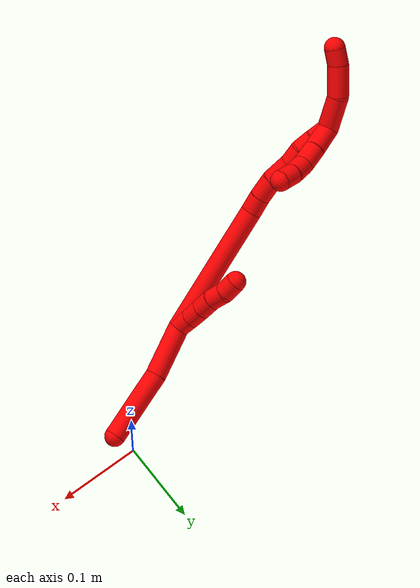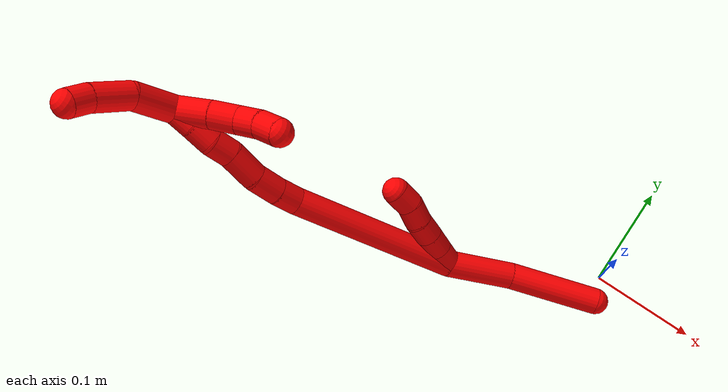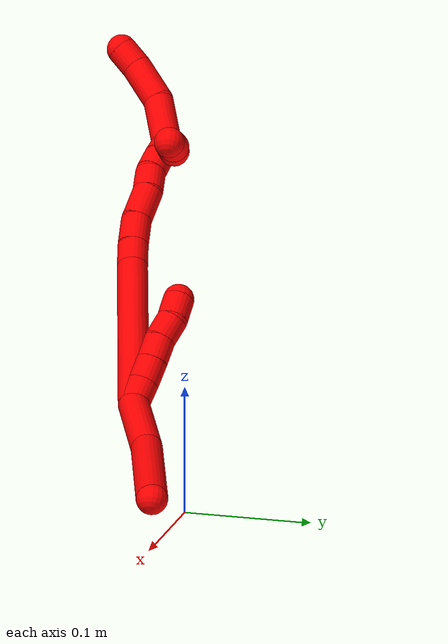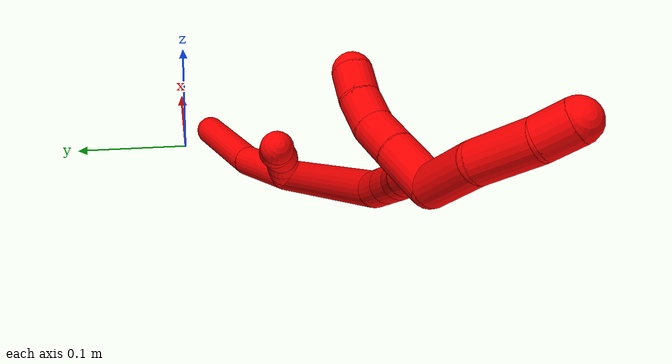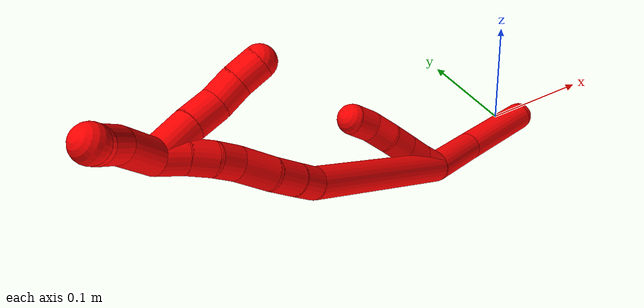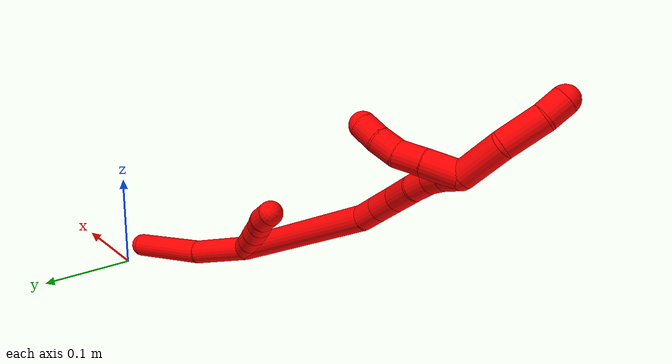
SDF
<sdf version="1.7">
 <world name="default">
  <model name="2">
   <static>0</static>
   <link name="2">
    <collision name="collision-cylinder-e_1_2_8">
     <pose>0.016115 0.006803 -0.02625 -2.88802 0.536197 -2.27269</pose>
     <geometry><cylinder><radius>0.0125</radius><length>0.063089</length></cylinder></geometry>
     <surface>
      <friction><ode><mu>1.16</mu><mu2>1.16</mu2><slip1>0</slip1><slip2>0</slip2></ode></friction>
      <contact><ode><kp>1e+06</kp><kd>1</kd><max_vel>0</max_vel><min_depth>0.001</min_depth></ode></contact>
     </surface>
    </collision>
    <visual name="visual-cylinder-e_1_2_8">
     <pose>0.016115 0.006803 -0.02625 -2.88802 0.536197 -2.27269</pose>
     <geometry><cylinder><radius>0.0125</radius><length>0.063089</length></cylinder></geometry>
     <material><ambient>1 0 0 1</ambient></material>
    </visual>
    <collision name="collision-cylinder-e_2_8_6">
     <pose>0.058947 0.017326 -0.086571 -3.03281 0.662132 -2.82741</pose>
     <geometry><cylinder><radius>0.0125</radius><length>0.086911</length></cylinder></geometry>
     <surface>
      <friction><ode><mu>1.16</mu><mu2>1.16</mu2><slip1>0</slip1><slip2>0</slip2></ode></friction>
      <contact><ode><kp>1e+06</kp><kd>1</kd><max_vel>0</max_vel><min_depth>0.001</min_depth></ode></contact>
     </surface>
    </collision>
    <visual name="visual-cylinder-e_2_8_6">
     <pose>0.058947 0.017326 -0.086571 -3.03281 0.662132 -2.82741</pose>
     <geometry><cylinder><radius>0.0125</radius><length>0.086911</length></cylinder></geometry>
     <material><ambient>1 0 0 1</ambient></material>
    </visual>
    <collision name="collision-cylinder-e_1_2_9">
     <pose>0.000147 0.002766 0.009609 -0.280285 0.014717 -0.002076</pose>
     <geometry><cylinder><radius>0.0125</radius><length>0.02</length></cylinder></geometry>
     <surface>
      <friction><ode><mu>1.16</mu><mu2>1.16</mu2><slip1>0</slip1><slip2>0</slip2></ode></friction>
      <contact><ode><kp>1e+06</kp><kd>1</kd><max_vel>0</max_vel><min_depth>0.001</min_depth></ode></contact>
     </surface>
    </collision>
    <visual name="visual-cylinder-e_1_2_9">
     <pose>0.000147 0.002766 0.009609 -0.280285 0.014717 -0.002076</pose>
     <geometry><cylinder><radius>0.0125</radius><length>0.02</length></cylinder></geometry>
     <material><ambient>1 0 0 1</ambient></material>
    </visual>
    <collision name="collision-cylinder-e_2_9_10">
     <pose>0.000965 0.008025 0.028878 -0.252547 0.067108 -0.008522</pose>
     <geometry><cylinder><radius>0.0125</radius><length>0.02</length></cylinder></geometry>
     <surface>
      <friction><ode><mu>1.16</mu><mu2>1.16</mu2><slip1>0</slip1><slip2>0</slip2></ode></friction>
      <contact><ode><kp>1e+06</kp><kd>1</kd><max_vel>0</max_vel><min_depth>0.001</min_depth></ode></contact>
     </surface>
    </collision>
    <visual name="visual-cylinder-e_2_9_10">
     <pose>0.000965 0.008025 0.028878 -0.252547 0.067108 -0.008522</pose>
     <geometry><cylinder><radius>0.0125</radius><length>0.02</length></cylinder></geometry>
     <material><ambient>1 0 0 1</ambient></material>
    </visual>
    <collision name="collision-cylinder-e_3_10_11">
     <pose>0.002229 0.012705 0.048279 -0.220846 0.059429 -0.006591</pose>
     <geometry><cylinder><radius>0.0125</radius><length>0.02</length></cylinder></geometry>
     <surface>
      <friction><ode><mu>1.16</mu><mu2>1.16</mu2><slip1>0</slip1><slip2>0</slip2></ode></friction>
      <contact><ode><kp>1e+06</kp><kd>1</kd><max_vel>0</max_vel><min_depth>0.001</min_depth></ode></contact>
     </surface>
    </collision>
    <visual name="visual-cylinder-e_3_10_11">
     <pose>0.002229 0.012705 0.048279 -0.220846 0.059429 -0.006591</pose>
     <geometry><cylinder><radius>0.0125</radius><length>0.02</length></cylinder></geometry>
     <material><ambient>1 0 0 1</ambient></material>
    </visual>
    <collision name="collision-cylinder-e_4_11_12">
     <pose>0.003386 0.01882 0.067198 -0.404429 0.056249 -0.011535</pose>
     <geometry><cylinder><radius>0.0125</radius><length>0.02</length></cylinder></geometry>
     <surface>
      <friction><ode><mu>1.16</mu><mu2>1.16</mu2><slip1>0</slip1><slip2>0</slip2></ode></friction>
      <contact><ode><kp>1e+06</kp><kd>1</kd><max_vel>0</max_vel><min_depth>0.001</min_depth></ode></contact>
     </surface>
    </collision>
    <visual name="visual-cylinder-e_4_11_12">
     <pose>0.003386 0.01882 0.067198 -0.404429 0.056249 -0.011535</pose>
     <geometry><cylinder><radius>0.0125</radius><length>0.02</length></cylinder></geometry>
     <material><ambient>1 0 0 1</ambient></material>
    </visual>
    <collision name="collision-cylinder-e_5_12_5">
     <pose>0.002949 0.024439 0.086182 -0.17073 -0.100042 0.008568</pose>
     <geometry><cylinder><radius>0.0125</radius><length>0.02</length></cylinder></geometry>
     <surface>
      <friction><ode><mu>1.16</mu><mu2>1.16</mu2><slip1>0</slip1><slip2>0</slip2></ode></friction>
      <contact><ode><kp>1e+06</kp><kd>1</kd><max_vel>0</max_vel><min_depth>0.001</min_depth></ode></contact>
     </surface>
    </collision>
    <visual name="visual-cylinder-e_5_12_5">
     <pose>0.002949 0.024439 0.086182 -0.17073 -0.100042 0.008568</pose>
     <geometry><cylinder><radius>0.0125</radius><length>0.02</length></cylinder></geometry>
     <material><ambient>1 0 0 1</ambient></material>
    </visual>
    <collision name="collision-cylinder-e_1_2_13">
     <pose>-0.028587 -0.006414 0.075492 0.084755 -0.360803 -0.015467</pose>
     <geometry><cylinder><radius>0.0125</radius><length>0.161956</length></cylinder></geometry>
     <surface>
      <friction><ode><mu>1.16</mu><mu2>1.16</mu2><slip1>0</slip1><slip2>0</slip2></ode></friction>
      <contact><ode><kp>1e+06</kp><kd>1</kd><max_vel>0</max_vel><min_depth>0.001</min_depth></ode></contact>
     </surface>
    </collision>
    <visual name="visual-cylinder-e_1_2_13">
     <pose>-0.028587 -0.006414 0.075492 0.084755 -0.360803 -0.015467</pose>
     <geometry><cylinder><radius>0.0125</radius><length>0.161956</length></cylinder></geometry>
     <material><ambient>1 0 0 1</ambient></material>
    </visual>
    <collision name="collision-cylinder-e_2_13_14">
     <pose>-0.058669 -0.013549 0.161707 0.067197 -0.1382 -0.004652</pose>
     <geometry><cylinder><radius>0.0125</radius><length>0.0217</length></cylinder></geometry>
     <surface>
      <friction><ode><mu>1.16</mu><mu2>1.16</mu2><slip1>0</slip1><slip2>0</slip2></ode></friction>
      <contact><ode><kp>1e+06</kp><kd>1</kd><max_vel>0</max_vel><min_depth>0.001</min_depth></ode></contact>
     </surface>
    </collision>
    <visual name="visual-cylinder-e_2_13_14">
     <pose>-0.058669 -0.013549 0.161707 0.067197 -0.1382 -0.004652</pose>
     <geometry><cylinder><radius>0.0125</radius><length>0.0217</length></cylinder></geometry>
     <material><ambient>1 0 0 1</ambient></material>
    </visual>
    <collision name="collision-cylinder-e_3_14_15">
     <pose>-0.061941 -0.014099 0.18497 -0.013665 -0.140762 0.000963</pose>
     <geometry><cylinder><radius>0.0125</radius><length>0.025334</length></cylinder></geometry>
     <surface>
      <friction><ode><mu>1.16</mu><mu2>1.16</mu2><slip1>0</slip1><slip2>0</slip2></ode></friction>
      <contact><ode><kp>1e+06</kp><kd>1</kd><max_vel>0</max_vel><min_depth>0.001</min_depth></ode></contact>
     </surface>
    </collision>
    <visual name="visual-cylinder-e_3_14_15">
     <pose>-0.061941 -0.014099 0.18497 -0.013665 -0.140762 0.000963</pose>
     <geometry><cylinder><radius>0.0125</radius><length>0.025334</length></cylinder></geometry>
     <material><ambient>1 0 0 1</ambient></material>
    </visual>
    <collision name="collision-cylinder-e_4_15_16">
     <pose>-0.065529 -0.010625 0.212108 -0.22255 -0.120361 0.013465</pose>
     <geometry><cylinder><radius>0.0125</radius><length>0.030152</length></cylinder></geometry>
     <surface>
      <friction><ode><mu>1.16</mu><mu2>1.16</mu2><slip1>0</slip1><slip2>0</slip2></ode></friction>
      <contact><ode><kp>1e+06</kp><kd>1</kd><max_vel>0</max_vel><min_depth>0.001</min_depth></ode></contact>
     </surface>
    </collision>
    <visual name="visual-cylinder-e_4_15_16">
     <pose>-0.065529 -0.010625 0.212108 -0.22255 -0.120361 0.013465</pose>
     <geometry><cylinder><radius>0.0125</radius><length>0.030152</length></cylinder></geometry>
     <material><ambient>1 0 0 1</ambient></material>
    </visual>
    <collision name="collision-cylinder-e_5_16_17">
     <pose>-0.069209 -0.007045 0.236772 -0.027456 -0.183645 0.002528</pose>
     <geometry><cylinder><radius>0.0125</radius><length>0.020484</length></cylinder></geometry>
     <surface>
      <friction><ode><mu>1.16</mu><mu2>1.16</mu2><slip1>0</slip1><slip2>0</slip2></ode></friction>
      <contact><ode><kp>1e+06</kp><kd>1</kd><max_vel>0</max_vel><min_depth>0.001</min_depth></ode></contact>
     </surface>
    </collision>
    <visual name="visual-cylinder-e_5_16_17">
     <pose>-0.069209 -0.007045 0.236772 -0.027456 -0.183645 0.002528</pose>
     <geometry><cylinder><radius>0.0125</radius><length>0.020484</length></cylinder></geometry>
     <material><ambient>1 0 0 1</ambient></material>
    </visual>
    <collision name="collision-cylinder-e_6_17_18">
     <pose>-0.07413 -0.004155 0.256055 -0.276246 -0.308247 0.043185</pose>
     <geometry><cylinder><radius>0.0125</radius><length>0.020109</length></cylinder></geometry>
     <surface>
      <friction><ode><mu>1.16</mu><mu2>1.16</mu2><slip1>0</slip1><slip2>0</slip2></ode></friction>
      <contact><ode><kp>1e+06</kp><kd>1</kd><max_vel>0</max_vel><min_depth>0.001</min_depth></ode></contact>
     </surface>
    </collision>
    <visual name="visual-cylinder-e_6_17_18">
     <pose>-0.07413 -0.004155 0.256055 -0.276246 -0.308247 0.043185</pose>
     <geometry><cylinder><radius>0.0125</radius><length>0.020109</length></cylinder></geometry>
     <material><ambient>1 0 0 1</ambient></material>
    </visual>
    <collision name="collision-cylinder-e_7_18_1">
     <pose>-0.081301 0.001298 0.274083 -0.311857 -0.418825 0.066796</pose>
     <geometry><cylinder><radius>0.0125</radius><length>0.020265</length></cylinder></geometry>
     <surface>
      <friction><ode><mu>1.16</mu><mu2>1.16</mu2><slip1>0</slip1><slip2>0</slip2></ode></friction>
      <contact><ode><kp>1e+06</kp><kd>1</kd><max_vel>0</max_vel><min_depth>0.001</min_depth></ode></contact>
     </surface>
    </collision>
    <visual name="visual-cylinder-e_7_18_1">
     <pose>-0.081301 0.001298 0.274083 -0.311857 -0.418825 0.066796</pose>
     <geometry><cylinder><radius>0.0125</radius><length>0.020265</length></cylinder></geometry>
     <material><ambient>1 0 0 1</ambient></material>
    </visual>
    <collision name="collision-cylinder-e_1_1_19">
     <pose>-0.086046 -0.001448 0.303159 0.268946 -0.029676 -0.004015</pose>
     <geometry><cylinder><radius>0.0125</radius><length>0.042063</length></cylinder></geometry>
     <surface>
      <friction><ode><mu>1.16</mu><mu2>1.16</mu2><slip1>0</slip1><slip2>0</slip2></ode></friction>
      <contact><ode><kp>1e+06</kp><kd>1</kd><max_vel>0</max_vel><min_depth>0.001</min_depth></ode></contact>
     </surface>
    </collision>
    <visual name="visual-cylinder-e_1_1_19">
     <pose>-0.086046 -0.001448 0.303159 0.268946 -0.029676 -0.004015</pose>
     <geometry><cylinder><radius>0.0125</radius><length>0.042063</length></cylinder></geometry>
     <material><ambient>1 0 0 1</ambient></material>
    </visual>
    <collision name="collision-cylinder-e_2_19_20">
     <pose>-0.088291 -0.017527 0.338863 0.596997 -0.08666 -0.02668</pose>
     <geometry><cylinder><radius>0.0125</radius><length>0.037472</length></cylinder></geometry>
     <surface>
      <friction><ode><mu>1.16</mu><mu2>1.16</mu2><slip1>0</slip1><slip2>0</slip2></ode></friction>
      <contact><ode><kp>1e+06</kp><kd>1</kd><max_vel>0</max_vel><min_depth>0.001</min_depth></ode></contact>
     </surface>
    </collision>
    <visual name="visual-cylinder-e_2_19_20">
     <pose>-0.088291 -0.017527 0.338863 0.596997 -0.08666 -0.02668</pose>
     <geometry><cylinder><radius>0.0125</radius><length>0.037472</length></cylinder></geometry>
     <material><ambient>1 0 0 1</ambient></material>
    </visual>
    <collision name="collision-cylinder-e_3_20_4">
     <pose>-0.089568 -0.03508 0.361699 0.762007 0.033713 0.013506</pose>
     <geometry><cylinder><radius>0.0125</radius><length>0.020465</length></cylinder></geometry>
     <surface>
      <friction><ode><mu>1.16</mu><mu2>1.16</mu2><slip1>0</slip1><slip2>0</slip2></ode></friction>
      <contact><ode><kp>1e+06</kp><kd>1</kd><max_vel>0</max_vel><min_depth>0.001</min_depth></ode></contact>
     </surface>
    </collision>
    <visual name="visual-cylinder-e_3_20_4">
     <pose>-0.089568 -0.03508 0.361699 0.762007 0.033713 0.013506</pose>
     <geometry><cylinder><radius>0.0125</radius><length>0.020465</length></cylinder></geometry>
     <material><ambient>1 0 0 1</ambient></material>
    </visual>
    <collision name="collision-cylinder-e_1_1_21">
     <pose>-0.071603 0.006087 0.274077 -2.92403 0.992057 -2.74331</pose>
     <geometry><cylinder><radius>0.0125</radius><length>0.033014</length></cylinder></geometry>
     <surface>
      <friction><ode><mu>1.16</mu><mu2>1.16</mu2><slip1>0</slip1><slip2>0</slip2></ode></friction>
      <contact><ode><kp>1e+06</kp><kd>1</kd><max_vel>0</max_vel><min_depth>0.001</min_depth></ode></contact>
     </surface>
    </collision>
    <visual name="visual-cylinder-e_1_1_21">
     <pose>-0.071603 0.006087 0.274077 -2.92403 0.992057 -2.74331</pose>
     <geometry><cylinder><radius>0.0125</radius><length>0.033014</length></cylinder></geometry>
     <material><ambient>1 0 0 1</ambient></material>
    </visual>
    <collision name="collision-cylinder-e_2_21_22">
     <pose>-0.047644 0.008985 0.258094 -3.00994 0.951424 -2.88705</pose>
     <geometry><cylinder><radius>0.0125</radius><length>0.024907</length></cylinder></geometry>
     <surface>
      <friction><ode><mu>1.16</mu><mu2>1.16</mu2><slip1>0</slip1><slip2>0</slip2></ode></friction>
      <contact><ode><kp>1e+06</kp><kd>1</kd><max_vel>0</max_vel><min_depth>0.001</min_depth></ode></contact>
     </surface>
    </collision>
    <visual name="visual-cylinder-e_2_21_22">
     <pose>-0.047644 0.008985 0.258094 -3.00994 0.951424 -2.88705</pose>
     <geometry><cylinder><radius>0.0125</radius><length>0.024907</length></cylinder></geometry>
     <material><ambient>1 0 0 1</ambient></material>
    </visual>
    <collision name="collision-cylinder-e_3_22_23">
     <pose>-0.027446 0.009442 0.247335 3.00534 1.22481 2.94795</pose>
     <geometry><cylinder><radius>0.0125</radius><length>0.021383</length></cylinder></geometry>
     <surface>
      <friction><ode><mu>1.16</mu><mu2>1.16</mu2><slip1>0</slip1><slip2>0</slip2></ode></friction>
      <contact><ode><kp>1e+06</kp><kd>1</kd><max_vel>0</max_vel><min_depth>0.001</min_depth></ode></contact>
     </surface>
    </collision>
    <visual name="visual-cylinder-e_3_22_23">
     <pose>-0.027446 0.009442 0.247335 3.00534 1.22481 2.94795</pose>
     <geometry><cylinder><radius>0.0125</radius><length>0.021383</length></cylinder></geometry>
     <material><ambient>1 0 0 1</ambient></material>
    </visual>
    <collision name="collision-cylinder-e_4_23_3">
     <pose>-0.007872 0.006756 0.24032 2.5718 1.16713 2.30664</pose>
     <geometry><cylinder><radius>0.0125</radius><length>0.020697</length></cylinder></geometry>
     <surface>
      <friction><ode><mu>1.16</mu><mu2>1.16</mu2><slip1>0</slip1><slip2>0</slip2></ode></friction>
      <contact><ode><kp>1e+06</kp><kd>1</kd><max_vel>0</max_vel><min_depth>0.001</min_depth></ode></contact>
     </surface>
    </collision>
    <visual name="visual-cylinder-e_4_23_3">
     <pose>-0.007872 0.006756 0.24032 2.5718 1.16713 2.30664</pose>
     <geometry><cylinder><radius>0.0125</radius><length>0.020697</length></cylinder></geometry>
     <material><ambient>1 0 0 1</ambient></material>
    </visual>
    <collision name="collision-sphere-3">
     <pose>0.001645 0.004564 0.236898 0 -0 0</pose>
     <geometry><sphere><radius>0.0125</radius></sphere></geometry>
     <surface>
      <friction><ode><mu>1.16</mu><mu2>1.16</mu2><slip1>0</slip1><slip2>0</slip2></ode></friction>
      <contact><ode><kp>1e+06</kp><kd>1</kd><max_vel>0</max_vel><min_depth>0.001</min_depth></ode></contact>
     </surface>
    </collision>
    <visual name="visual-sphere-3">
     <pose>0.001645 0.004564 0.236898 0 -0 0</pose>
     <geometry><sphere><radius>0.0125</radius></sphere></geometry>
     <material><ambient>1 0 0 1</ambient></material>
    </visual>
    <collision name="collision-sphere-23">
     <pose>-0.017389 0.008949 0.243743 0 -0 0</pose>
     <geometry><sphere><radius>0.0125</radius></sphere></geometry>
     <surface>
      <friction><ode><mu>1.16</mu><mu2>1.16</mu2><slip1>0</slip1><slip2>0</slip2></ode></friction>
      <contact><ode><kp>1e+06</kp><kd>1</kd><max_vel>0</max_vel><min_depth>0.001</min_depth></ode></contact>
     </surface>
    </collision>
    <visual name="visual-sphere-23">
     <pose>-0.017389 0.008949 0.243743 0 -0 0</pose>
     <geometry><sphere><radius>0.0125</radius></sphere></geometry>
     <material><ambient>1 0 0 1</ambient></material>
    </visual>
    <collision name="collision-sphere-22">
     <pose>-0.037504 0.009934 0.250927 0 -0 0</pose>
     <geometry><sphere><radius>0.0125</radius></sphere></geometry>
     <surface>
      <friction><ode><mu>1.16</mu><mu2>1.16</mu2><slip1>0</slip1><slip2>0</slip2></ode></friction>
      <contact><ode><kp>1e+06</kp><kd>1</kd><max_vel>0</max_vel><min_depth>0.001</min_depth></ode></contact>
     </surface>
    </collision>
    <visual name="visual-sphere-22">
     <pose>-0.037504 0.009934 0.250927 0 -0 0</pose>
     <geometry><sphere><radius>0.0125</radius></sphere></geometry>
     <material><ambient>1 0 0 1</ambient></material>
    </visual>
    <collision name="collision-sphere-21">
     <pose>-0.057784 0.008036 0.265261 0 -0 0</pose>
     <geometry><sphere><radius>0.0125</radius></sphere></geometry>
     <surface>
      <friction><ode><mu>1.16</mu><mu2>1.16</mu2><slip1>0</slip1><slip2>0</slip2></ode></friction>
      <contact><ode><kp>1e+06</kp><kd>1</kd><max_vel>0</max_vel><min_depth>0.001</min_depth></ode></contact>
     </surface>
    </collision>
    <visual name="visual-sphere-21">
     <pose>-0.057784 0.008036 0.265261 0 -0 0</pose>
     <geometry><sphere><radius>0.0125</radius></sphere></geometry>
     <material><ambient>1 0 0 1</ambient></material>
    </visual>
    <collision name="collision-sphere-4">
     <pose>-0.089223 -0.04214 0.369097 0 -0 0</pose>
     <geometry><sphere><radius>0.0125</radius></sphere></geometry>
     <surface>
      <friction><ode><mu>1.16</mu><mu2>1.16</mu2><slip1>0</slip1><slip2>0</slip2></ode></friction>
      <contact><ode><kp>1e+06</kp><kd>1</kd><max_vel>0</max_vel><min_depth>0.001</min_depth></ode></contact>
     </surface>
    </collision>
    <visual name="visual-sphere-4">
     <pose>-0.089223 -0.04214 0.369097 0 -0 0</pose>
     <geometry><sphere><radius>0.0125</radius></sphere></geometry>
     <material><ambient>1 0 0 1</ambient></material>
    </visual>
    <collision name="collision-sphere-20">
     <pose>-0.089913 -0.02802 0.3543 0 -0 0</pose>
     <geometry><sphere><radius>0.0125</radius></sphere></geometry>
     <surface>
      <friction><ode><mu>1.16</mu><mu2>1.16</mu2><slip1>0</slip1><slip2>0</slip2></ode></friction>
      <contact><ode><kp>1e+06</kp><kd>1</kd><max_vel>0</max_vel><min_depth>0.001</min_depth></ode></contact>
     </surface>
    </collision>
    <visual name="visual-sphere-20">
     <pose>-0.089913 -0.02802 0.3543 0 -0 0</pose>
     <geometry><sphere><radius>0.0125</radius></sphere></geometry>
     <material><ambient>1 0 0 1</ambient></material>
    </visual>
    <collision name="collision-sphere-11">
     <pose>0.002823 0.014892 0.058019 0 -0 0</pose>
     <geometry><sphere><radius>0.0125</radius></sphere></geometry>
     <surface>
      <friction><ode><mu>1.16</mu><mu2>1.16</mu2><slip1>0</slip1><slip2>0</slip2></ode></friction>
      <contact><ode><kp>1e+06</kp><kd>1</kd><max_vel>0</max_vel><min_depth>0.001</min_depth></ode></contact>
     </surface>
    </collision>
    <visual name="visual-sphere-11">
     <pose>0.002823 0.014892 0.058019 0 -0 0</pose>
     <geometry><sphere><radius>0.0125</radius></sphere></geometry>
     <material><ambient>1 0 0 1</ambient></material>
    </visual>
    <collision name="collision-sphere-10">
     <pose>0.001635 0.010518 0.038539 0 -0 0</pose>
     <geometry><sphere><radius>0.0125</radius></sphere></geometry>
     <surface>
      <friction><ode><mu>1.16</mu><mu2>1.16</mu2><slip1>0</slip1><slip2>0</slip2></ode></friction>
      <contact><ode><kp>1e+06</kp><kd>1</kd><max_vel>0</max_vel><min_depth>0.001</min_depth></ode></contact>
     </surface>
    </collision>
    <visual name="visual-sphere-10">
     <pose>0.001635 0.010518 0.038539 0 -0 0</pose>
     <geometry><sphere><radius>0.0125</radius></sphere></geometry>
     <material><ambient>1 0 0 1</ambient></material>
    </visual>
    <collision name="collision-sphere-6">
     <pose>0.085663 0.021047 -0.120641 0 -0 0</pose>
     <geometry><sphere><radius>0.0125</radius></sphere></geometry>
     <surface>
      <friction><ode><mu>1.16</mu><mu2>1.16</mu2><slip1>0</slip1><slip2>0</slip2></ode></friction>
      <contact><ode><kp>1e+06</kp><kd>1</kd><max_vel>0</max_vel><min_depth>0.001</min_depth></ode></contact>
     </surface>
    </collision>
    <visual name="visual-sphere-6">
     <pose>0.085663 0.021047 -0.120641 0 -0 0</pose>
     <geometry><sphere><radius>0.0125</radius></sphere></geometry>
     <material><ambient>1 0 0 1</ambient></material>
    </visual>
    <collision name="collision-sphere-9">
     <pose>0.000294 0.005532 0.019217 0 -0 0</pose>
     <geometry><sphere><radius>0.0125</radius></sphere></geometry>
     <surface>
      <friction><ode><mu>1.16</mu><mu2>1.16</mu2><slip1>0</slip1><slip2>0</slip2></ode></friction>
      <contact><ode><kp>1e+06</kp><kd>1</kd><max_vel>0</max_vel><min_depth>0.001</min_depth></ode></contact>
     </surface>
    </collision>
    <visual name="visual-sphere-9">
     <pose>0.000294 0.005532 0.019217 0 -0 0</pose>
     <geometry><sphere><radius>0.0125</radius></sphere></geometry>
     <material><ambient>1 0 0 1</ambient></material>
    </visual>
    <collision name="collision-sphere-2">
     <geometry><sphere><radius>0.0125</radius></sphere></geometry>
     <surface>
      <friction><ode><mu>1.16</mu><mu2>1.16</mu2><slip1>0</slip1><slip2>0</slip2></ode></friction>
      <contact><ode><kp>1e+06</kp><kd>1</kd><max_vel>0</max_vel><min_depth>0.001</min_depth></ode></contact>
     </surface>
    </collision>
    <visual name="visual-sphere-2">
     <geometry><sphere><radius>0.0125</radius></sphere></geometry>
     <material><ambient>1 0 0 1</ambient></material>
    </visual>
    <collision name="collision-sphere-19">
     <pose>-0.08667 -0.007034 0.323426 0 -0 0</pose>
     <geometry><sphere><radius>0.0125</radius></sphere></geometry>
     <surface>
      <friction><ode><mu>1.16</mu><mu2>1.16</mu2><slip1>0</slip1><slip2>0</slip2></ode></friction>
      <contact><ode><kp>1e+06</kp><kd>1</kd><max_vel>0</max_vel><min_depth>0.001</min_depth></ode></contact>
     </surface>
    </collision>
    <visual name="visual-sphere-19">
     <pose>-0.08667 -0.007034 0.323426 0 -0 0</pose>
     <geometry><sphere><radius>0.0125</radius></sphere></geometry>
     <material><ambient>1 0 0 1</ambient></material>
    </visual>
    <collision name="collision-sphere-8">
     <pose>0.03223 0.013606 -0.052501 0 -0 0</pose>
     <geometry><sphere><radius>0.0125</radius></sphere></geometry>
     <surface>
      <friction><ode><mu>1.16</mu><mu2>1.16</mu2><slip1>0</slip1><slip2>0</slip2></ode></friction>
      <contact><ode><kp>1e+06</kp><kd>1</kd><max_vel>0</max_vel><min_depth>0.001</min_depth></ode></contact>
     </surface>
    </collision>
    <visual name="visual-sphere-8">
     <pose>0.03223 0.013606 -0.052501 0 -0 0</pose>
     <geometry><sphere><radius>0.0125</radius></sphere></geometry>
     <material><ambient>1 0 0 1</ambient></material>
    </visual>
    <collision name="collision-sphere-12">
     <pose>0.003948 0.022749 0.076377 0 -0 0</pose>
     <geometry><sphere><radius>0.0125</radius></sphere></geometry>
     <surface>
      <friction><ode><mu>1.16</mu><mu2>1.16</mu2><slip1>0</slip1><slip2>0</slip2></ode></friction>
      <contact><ode><kp>1e+06</kp><kd>1</kd><max_vel>0</max_vel><min_depth>0.001</min_depth></ode></contact>
     </surface>
    </collision>
    <visual name="visual-sphere-12">
     <pose>0.003948 0.022749 0.076377 0 -0 0</pose>
     <geometry><sphere><radius>0.0125</radius></sphere></geometry>
     <material><ambient>1 0 0 1</ambient></material>
    </visual>
    <collision name="collision-sphere-5">
     <pose>0.00195 0.02613 0.095987 0 -0 0</pose>
     <geometry><sphere><radius>0.0125</radius></sphere></geometry>
     <surface>
      <friction><ode><mu>1.16</mu><mu2>1.16</mu2><slip1>0</slip1><slip2>0</slip2></ode></friction>
      <contact><ode><kp>1e+06</kp><kd>1</kd><max_vel>0</max_vel><min_depth>0.001</min_depth></ode></contact>
     </surface>
    </collision>
    <visual name="visual-sphere-5">
     <pose>0.00195 0.02613 0.095987 0 -0 0</pose>
     <geometry><sphere><radius>0.0125</radius></sphere></geometry>
     <material><ambient>1 0 0 1</ambient></material>
    </visual>
    <collision name="collision-sphere-13">
     <pose>-0.057175 -0.012827 0.150985 0 -0 0</pose>
     <geometry><sphere><radius>0.0125</radius></sphere></geometry>
     <surface>
      <friction><ode><mu>1.16</mu><mu2>1.16</mu2><slip1>0</slip1><slip2>0</slip2></ode></friction>
      <contact><ode><kp>1e+06</kp><kd>1</kd><max_vel>0</max_vel><min_depth>0.001</min_depth></ode></contact>
     </surface>
    </collision>
    <visual name="visual-sphere-13">
     <pose>-0.057175 -0.012827 0.150985 0 -0 0</pose>
     <geometry><sphere><radius>0.0125</radius></sphere></geometry>
     <material><ambient>1 0 0 1</ambient></material>
    </visual>
    <collision name="collision-sphere-14">
     <pose>-0.060164 -0.014271 0.17243 0 -0 0</pose>
     <geometry><sphere><radius>0.0125</radius></sphere></geometry>
     <surface>
      <friction><ode><mu>1.16</mu><mu2>1.16</mu2><slip1>0</slip1><slip2>0</slip2></ode></friction>
      <contact><ode><kp>1e+06</kp><kd>1</kd><max_vel>0</max_vel><min_depth>0.001</min_depth></ode></contact>
     </surface>
    </collision>
    <visual name="visual-sphere-14">
     <pose>-0.060164 -0.014271 0.17243 0 -0 0</pose>
     <geometry><sphere><radius>0.0125</radius></sphere></geometry>
     <material><ambient>1 0 0 1</ambient></material>
    </visual>
    <collision name="collision-sphere-15">
     <pose>-0.063718 -0.013928 0.197511 0 -0 0</pose>
     <geometry><sphere><radius>0.0125</radius></sphere></geometry>
     <surface>
      <friction><ode><mu>1.16</mu><mu2>1.16</mu2><slip1>0</slip1><slip2>0</slip2></ode></friction>
      <contact><ode><kp>1e+06</kp><kd>1</kd><max_vel>0</max_vel><min_depth>0.001</min_depth></ode></contact>
     </surface>
    </collision>
    <visual name="visual-sphere-15">
     <pose>-0.063718 -0.013928 0.197511 0 -0 0</pose>
     <geometry><sphere><radius>0.0125</radius></sphere></geometry>
     <material><ambient>1 0 0 1</ambient></material>
    </visual>
    <collision name="collision-sphere-16">
     <pose>-0.067339 -0.007321 0.226706 0 -0 0</pose>
     <geometry><sphere><radius>0.0125</radius></sphere></geometry>
     <surface>
      <friction><ode><mu>1.16</mu><mu2>1.16</mu2><slip1>0</slip1><slip2>0</slip2></ode></friction>
      <contact><ode><kp>1e+06</kp><kd>1</kd><max_vel>0</max_vel><min_depth>0.001</min_depth></ode></contact>
     </surface>
    </collision>
    <visual name="visual-sphere-16">
     <pose>-0.067339 -0.007321 0.226706 0 -0 0</pose>
     <geometry><sphere><radius>0.0125</radius></sphere></geometry>
     <material><ambient>1 0 0 1</ambient></material>
    </visual>
    <collision name="collision-sphere-17">
     <pose>-0.071079 -0.006768 0.246838 0 -0 0</pose>
     <geometry><sphere><radius>0.0125</radius></sphere></geometry>
     <surface>
      <friction><ode><mu>1.16</mu><mu2>1.16</mu2><slip1>0</slip1><slip2>0</slip2></ode></friction>
      <contact><ode><kp>1e+06</kp><kd>1</kd><max_vel>0</max_vel><min_depth>0.001</min_depth></ode></contact>
     </surface>
    </collision>
    <visual name="visual-sphere-17">
     <pose>-0.071079 -0.006768 0.246838 0 -0 0</pose>
     <geometry><sphere><radius>0.0125</radius></sphere></geometry>
     <material><ambient>1 0 0 1</ambient></material>
    </visual>
    <collision name="collision-sphere-18">
     <pose>-0.07718 -0.001542 0.265273 0 -0 0</pose>
     <geometry><sphere><radius>0.0125</radius></sphere></geometry>
     <surface>
      <friction><ode><mu>1.16</mu><mu2>1.16</mu2><slip1>0</slip1><slip2>0</slip2></ode></friction>
      <contact><ode><kp>1e+06</kp><kd>1</kd><max_vel>0</max_vel><min_depth>0.001</min_depth></ode></contact>
     </surface>
    </collision>
    <visual name="visual-sphere-18">
     <pose>-0.07718 -0.001542 0.265273 0 -0 0</pose>
     <geometry><sphere><radius>0.0125</radius></sphere></geometry>
     <material><ambient>1 0 0 1</ambient></material>
    </visual>
    <collision name="collision-sphere-1">
     <pose>-0.085422 0.004138 0.282893 0 -0 0</pose>
     <geometry><sphere><radius>0.0125</radius></sphere></geometry>
     <surface>
      <friction><ode><mu>1.16</mu><mu2>1.16</mu2><slip1>0</slip1><slip2>0</slip2></ode></friction>
      <contact><ode><kp>1e+06</kp><kd>1</kd><max_vel>0</max_vel><min_depth>0.001</min_depth></ode></contact>
     </surface>
    </collision>
    <visual name="visual-sphere-1">
     <pose>-0.085422 0.004138 0.282893 0 -0 0</pose>
     <geometry><sphere><radius>0.0125</radius></sphere></geometry>
     <material><ambient>1 0 0 1</ambient></material>
    </visual>
    <inertial>
     <pose>-0.027642 0.000519 0.128779 0 -0 0</pose>
     <mass>0.75</mass>
     <inertia>
      <ixx>0.000281</ixx>
      <ixy>0</ixy>
      <ixz>0</ixz>
      <iyy>0.000439</iyy>
      <iyz>0</iyz>
      <izz>0.000119</izz>
     </inertia>
    </inertial>
   </link>
   <pose>-0.126992 -0.077846 0.044295 -0.164187 -0.73867 0.37145</pose>
  </model>
 </world>
</sdf>
